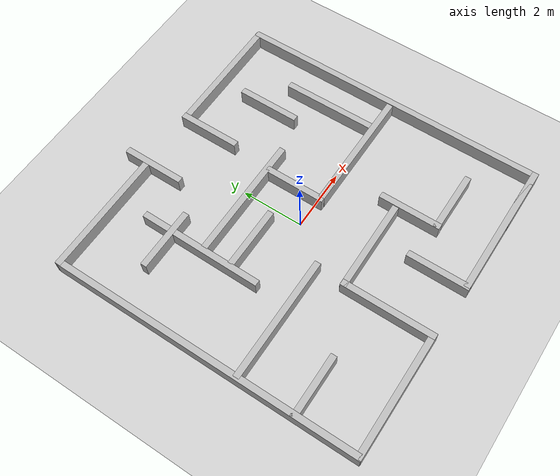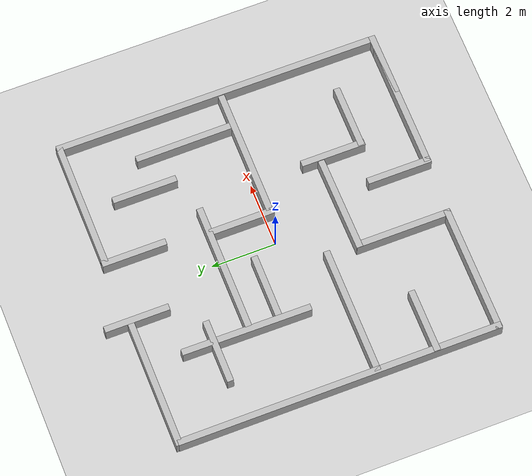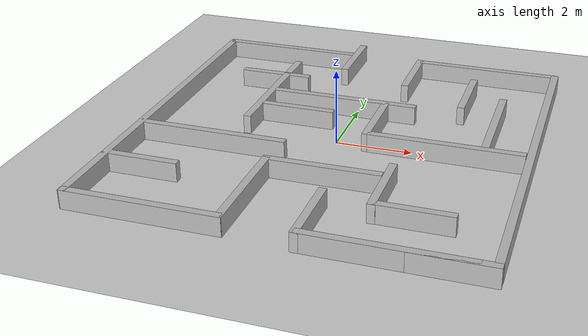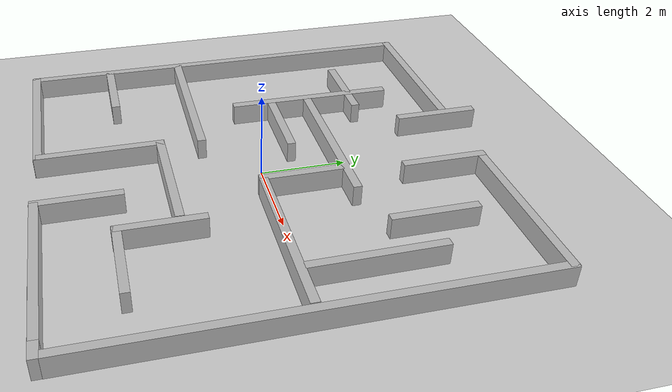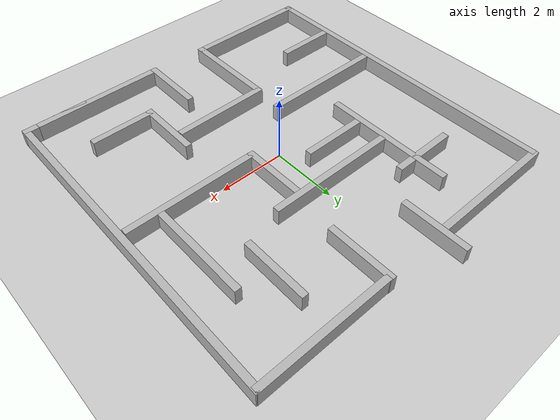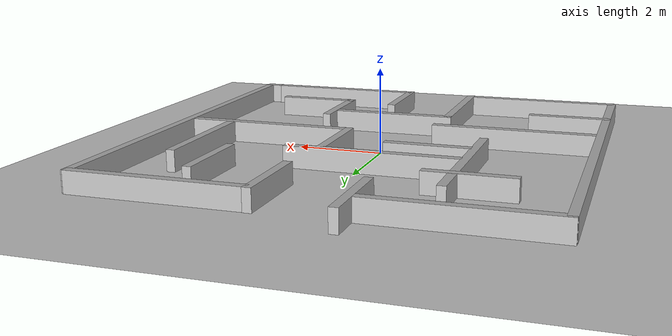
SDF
<sdf version="1.7">
 <world name="maze_world">
  <model name="ground_plane">
   <static>1</static>
   <link name="link">
    <collision name="collision">
     <geometry><plane><normal>0 0 1</normal><size>100 100</size></plane></geometry>
     <surface>
      <contact><collide_bitmask>65535</collide_bitmask></contact>
      <friction><ode><mu>100</mu><mu2>50</mu2></ode></friction>
     </surface>
    </collision>
    <visual name="visual">
     <cast_shadows>0</cast_shadows>
     <geometry><plane><normal>0 0 1</normal><size>100 100</size></plane></geometry>
     <material>
      <script><uri>file://media/materials/scripts/gazebo.material</uri><name>Gazebo/Grey</name></script>
     </material>
    </visual>
   </link>
  </model>
  <light name="sun" type="directional">
   <pose>0 0 10 0 -0 0</pose>
   <diffuse>0.8 0.8 0.8 1</diffuse>
   <specular>0.2 0.2 0.2 1</specular>
   <attenuation>
    <range>1000</range>
    <constant>0.9</constant>
    <linear>0.01</linear>
    <quadratic>0.001</quadratic>
   </attenuation>
   <direction>-0.5 0.1 -0.9</direction>
   <spot><inner_angle>0</inner_angle><outer_angle>0</outer_angle><falloff>0</falloff></spot>
  </light>
  <model name="south_wall_left">
   <static>1</static>
   <link name="link">
    <collision name="collision"><geometry><box><size>4 0.2 0.5</size></box></geometry></collision>
    <visual name="visual"><geometry><box><size>4 0.2 0.5</size></box></geometry></visual>
    <pose>-3 -5 0.25 0 -0 0</pose>
   </link>
  </model>
  <model name="south_wall_right">
   <pose>-0.336674 -0.084779 0 0 -0 0</pose>
   <static>1</static>
   <link name="link">
    <collision name="collision"><geometry><box><size>4 0.2 0.5</size></box></geometry></collision>
    <visual name="visual"><geometry><box><size>4 0.2 0.5</size></box></geometry></visual>
    <pose>3 -5 0.25 0 -0 0</pose>
   </link>
  </model>
  <model name="west_wall">
   <pose>0.077515 -0.091172 0 0 -0 0</pose>
   <static>1</static>
   <link name="link">
    <collision name="collision"><geometry><box><size>0.2 10 0.5</size></box></geometry></collision>
    <visual name="visual"><geometry><box><size>0.2 10 0.5</size></box></geometry></visual>
    <pose>-5 0 0.25 0 -0 0</pose>
   </link>
  </model>
  <model name="east_wall">
   <pose>0.006314 0.003506 0 0 -0 0</pose>
   <static>1</static>
   <link name="link">
    <collision name="collision"><geometry><box><size>0.2 10 0.5</size></box></geometry></collision>
    <visual name="visual"><geometry><box><size>0.2 10 0.5</size></box></geometry></visual>
    <pose>5 0 0.25 0 -0 0</pose>
   </link>
  </model>
  <model name="wall_1">
   <pose>-0.122746 -2.10208 0 0 0 -1.56432</pose>
   <static>1</static>
   <link name="link">
    <collision name="collision"><geometry><box><size>3 0.2 0.5</size></box></geometry></collision>
    <visual name="visual"><geometry><box><size>3 0.2 0.5</size></box></geometry></visual>
    <pose>-3.5 4 0.25 0 -0 0</pose>
   </link>
  </model>
  <model name="wall_2">
   <pose>0.913855 -6.09347 0 0 -0 0</pose>
   <static>1</static>
   <link name="link">
    <collision name="collision"><geometry><box><size>0.2 3 0.5</size></box></geometry></collision>
    <visual name="visual"><geometry><box><size>0.2 3 0.5</size></box></geometry></visual>
    <pose>-2 2.5 0.25 0 -0 0</pose>
   </link>
  </model>
  <model name="wall_3">
   <pose>-2.94728 -4.22411 0 0 -0 0</pose>
   <static>1</static>
   <link name="link">
    <collision name="collision"><geometry><box><size>4 0.2 0.5</size></box></geometry></collision>
    <visual name="visual"><geometry><box><size>4 0.2 0.5</size></box></geometry></visual>
    <pose>0 3 0.25 0 -0 0</pose>
   </link>
  </model>
  <model name="wall_4">
   <pose>0.93137 -4.57458 0 0 -0 0</pose>
   <static>1</static>
   <link name="link">
    <collision name="collision"><geometry><box><size>0.2 2 0.5</size></box></geometry></collision>
    <visual name="visual"><geometry><box><size>0.2 2 0.5</size></box></geometry></visual>
    <pose>1 2 0.25 0 -0 0</pose>
   </link>
  </model>
  <gravity>0 0 -9.8</gravity>
  <magnetic_field>6e-06 2.3e-05 -4.2e-05</magnetic_field>
  <atmosphere type="adiabatic"/>
  <physics type="ode">
   <max_step_size>0.001</max_step_size>
   <real_time_factor>1</real_time_factor>
   <real_time_update_rate>1000</real_time_update_rate>
  </physics>
  <scene><ambient>0.4 0.4 0.4 1</ambient><background>0.7 0.7 0.7 1</background><shadows>1</shadows></scene>
  <audio><device>default</device></audio>
  <spherical_coordinates>
   <surface_model>EARTH_WGS84</surface_model>
   <latitude_deg>0</latitude_deg>
   <longitude_deg>0</longitude_deg>
   <elevation>0</elevation>
   <heading_deg>0</heading_deg>
  </spherical_coordinates>
  <model name="wall_2_clone">
   <static>1</static>
   <link name="link">
    <collision name="collision"><geometry><box><size>0.2 3 0.5</size></box></geometry></collision>
    <visual name="visual"><geometry><box><size>0.2 3 0.5</size></box></geometry></visual>
    <pose>-2 2.5 0.25 0 -0 0</pose>
   </link>
   <pose>-2.1601 -4.19831 0 0 0 -1.55952</pose>
  </model>
  <model name="south_wall_right_clone">
   <static>1</static>
   <link name="link">
    <collision name="collision"><geometry><box><size>4 0.2 0.5</size></box></geometry></collision>
    <visual name="visual"><geometry><box><size>4 0.2 0.5</size></box></geometry></visual>
    <pose>3 -5 0.25 0 -0 0</pose>
   </link>
   <pose>0.072286 9.91721 -0 0 -0 0</pose>
  </model>
  <model name="south_wall_right_clone_0">
   <static>1</static>
   <link name="link">
    <collision name="collision"><geometry><box><size>4 0.2 0.5</size></box></geometry></collision>
    <visual name="visual"><geometry><box><size>4 0.2 0.5</size></box></geometry></visual>
    <pose>3 -5 0.25 0 -0 0</pose>
   </link>
   <pose>-6.01242 9.88414 0 0 -0 0</pose>
  </model>
  <model name="wall_3_clone">
   <static>1</static>
   <link name="link">
    <collision name="collision"><geometry><box><size>4 0.2 0.5</size></box></geometry></collision>
    <visual name="visual"><geometry><box><size>4 0.2 0.5</size></box></geometry></visual>
    <pose>0 3 0.25 0 -0 0</pose>
   </link>
   <pose>2.88757 -3.16363 0 0 -0 0</pose>
  </model>
  <model name="wall_3_clone_0">
   <static>1</static>
   <link name="link">
    <collision name="collision"><geometry><box><size>4 0.2 0.5</size></box></geometry></collision>
    <visual name="visual"><geometry><box><size>4 0.2 0.5</size></box></geometry></visual>
    <pose>0 3 0.25 0 -0 0</pose>
   </link>
   <pose>-0.321356 -1.25736 0 0 -0 0</pose>
  </model>
  <model name="wall_3_clone_1">
   <static>1</static>
   <link name="link">
    <collision name="collision"><geometry><box><size>4 0.2 0.5</size></box></geometry></collision>
    <visual name="visual"><geometry><box><size>4 0.2 0.5</size></box></geometry></visual>
    <pose>0 3 0.25 0 -0 0</pose>
   </link>
   <pose>-5.4008 1.8573 0 0 0 -1.57793</pose>
  </model>
  <model name="wall_4_clone">
   <static>1</static>
   <link name="link">
    <collision name="collision"><geometry><box><size>0.2 2 0.5</size></box></geometry></collision>
    <visual name="visual"><geometry><box><size>0.2 2 0.5</size></box></geometry></visual>
    <pose>1 2 0.25 0 -0 0</pose>
   </link>
   <pose>0.048248 2.02931 0 0 -0 0</pose>
  </model>
  <model name="wall_4_clone_0">
   <static>1</static>
   <link name="link">
    <collision name="collision"><geometry><box><size>0.2 2 0.5</size></box></geometry></collision>
    <visual name="visual"><geometry><box><size>0.2 2 0.5</size></box></geometry></visual>
    <pose>1 2 0.25 0 -0 0</pose>
   </link>
   <pose>-1.91245 2.66842 0 0 -0 0</pose>
  </model>
  <model name="wall_4_clone_1">
   <static>1</static>
   <link name="link">
    <collision name="collision"><geometry><box><size>0.2 2 0.5</size></box></geometry></collision>
    <visual name="visual"><geometry><box><size>0.2 2 0.5</size></box></geometry></visual>
    <pose>1 2 0.25 0 -0 0</pose>
   </link>
   <pose>-4.72273 3.83733 0 0 0 -1.56923</pose>
  </model>
  <model name="wall_4_clone_2">
   <static>1</static>
   <link name="link">
    <collision name="collision"><geometry><box><size>0.2 2 0.5</size></box></geometry></collision>
    <visual name="visual"><geometry><box><size>0.2 2 0.5</size></box></geometry></visual>
    <pose>1 2 0.25 0 -0 0</pose>
   </link>
   <pose>-0.302112 -6.18783 0 0 -0 0</pose>
  </model>
  <model name="wall_4_clone_2_clone">
   <static>1</static>
   <link name="link">
    <collision name="collision"><geometry><box><size>0.2 2 0.5</size></box></geometry></collision>
    <visual name="visual"><geometry><box><size>0.2 2 0.5</size></box></geometry></visual>
    <pose>1 2 0.25 0 -0 0</pose>
   </link>
   <pose>2.10025 -4.08967 0 0 0 -1.56919</pose>
  </model>
  <model name="wall_4_clone_0_clone">
   <static>1</static>
   <link name="link">
    <collision name="collision"><geometry><box><size>0.2 2 0.5</size></box></geometry></collision>
    <visual name="visual"><geometry><box><size>0.2 2 0.5</size></box></geometry></visual>
    <pose>1 2 0.25 0 -0 0</pose>
   </link>
   <pose>-0.153045 -1.25773 0 0 -0 0</pose>
  </model>
  <model name="wall_4_clone_3">
   <static>1</static>
   <link name="link">
    <collision name="collision"><geometry><box><size>0.2 2 0.5</size></box></geometry></collision>
    <visual name="visual"><geometry><box><size>0.2 2 0.5</size></box></geometry></visual>
    <pose>1 2 0.25 0 -0 0</pose>
   </link>
   <pose>1.84187 1.03314 0 0 -0 0</pose>
  </model>
  <model name="wall_4_clone_3_clone">
   <static>1</static>
   <link name="link">
    <collision name="collision"><geometry><box><size>0.2 2 0.5</size></box></geometry></collision>
    <visual name="visual"><geometry><box><size>0.2 2 0.5</size></box></geometry></visual>
    <pose>1 2 0.25 0 -0 0</pose>
   </link>
   <pose>-3.33112 1.80962 0 0 0 -1.57279</pose>
  </model>
  <model name="wall_4_clone_1_clone">
   <static>1</static>
   <link name="link">
    <collision name="collision"><geometry><box><size>0.2 2 0.5</size></box></geometry></collision>
    <visual name="visual"><geometry><box><size>0.2 2 0.5</size></box></geometry></visual>
    <pose>1 2 0.25 0 -0 0</pose>
   </link>
   <pose>0.855679 -2.46494 0 0 0 -1.56923</pose>
  </model>
  <model name="wall_4_clone_1_clone_0">
   <static>1</static>
   <link name="link">
    <collision name="collision"><geometry><box><size>0.2 2 0.5</size></box></geometry></collision>
    <visual name="visual"><geometry><box><size>0.2 2 0.5</size></box></geometry></visual>
    <pose>1 2 0.25 0 -0 0</pose>
   </link>
   <pose>-6.00907 -2.0636 0 0 0 -1.56923</pose>
  </model>
 </world>
</sdf>
